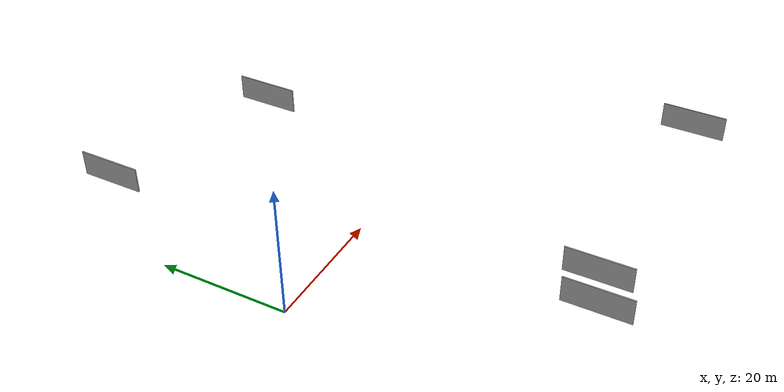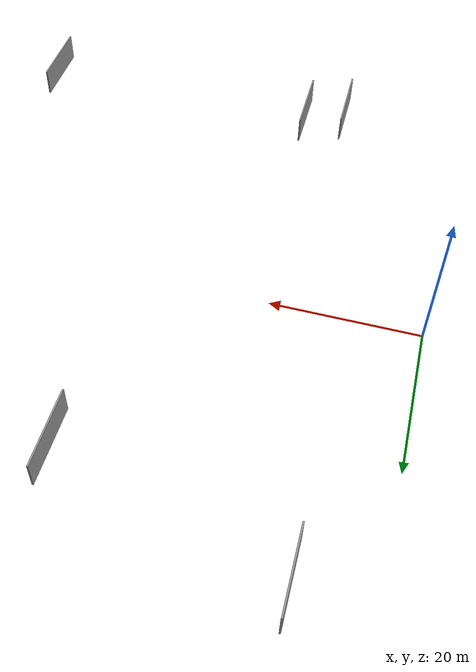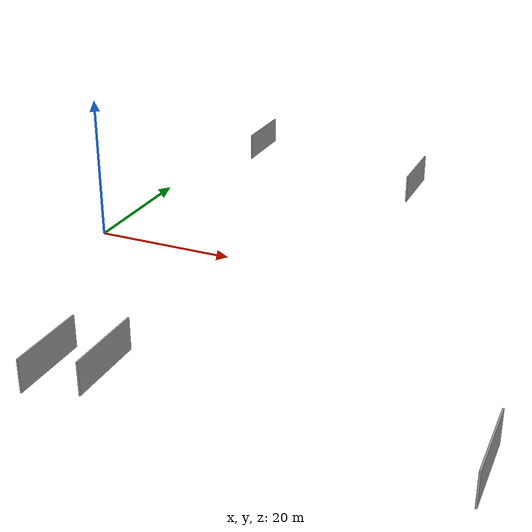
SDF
<sdf version="1.6">
 <world name="default">
  <scene>
   <sky><clouds><speed>12</speed></clouds></sky>
   <ambient>0.4 0.4 0.4 1</ambient>
   <background>0.7 0.7 0.7 1</background>
   <shadows>1</shadows>
  </scene>
  <gravity>0 0 -9.8066</gravity>
  <magnetic_field>6e-06 2.3e-05 -4.2e-05</magnetic_field>
  <physics default="0" name="default_physics" type="ode">
   <ode>
    <solver>
     <type>quick</type>
     <iters>10</iters>
     <sor>1.0</sor>
     <use_dynamic_moi_rescaling>0</use_dynamic_moi_rescaling>
    </solver>
    <constraints>
     <cfm>0</cfm>
     <erp>0.2</erp>
     <contact_max_correcting_vel>100</contact_max_correcting_vel>
     <contact_surface_layer>0.001</contact_surface_layer>
    </constraints>
   </ode>
   <max_step_size>0.004</max_step_size>
   <real_time_factor>1</real_time_factor>
   <real_time_update_rate>250</real_time_update_rate>
  </physics>
  <light name="sun" type="directional">
   <pose>0 0 10 0 0 0</pose>
   <diffuse>0.8 0.8 0.8 1</diffuse>
   <specular>0.2 0.2 0.2 1</specular>
   <attenuation>
    <range>1000</range>
    <constant>0.9</constant>
    <linear>0.01</linear>
    <quadratic>0.001</quadratic>
   </attenuation>
   <direction>-0.5 0.1 -0.9</direction>
  </light>
  <model name="grey_wall_1">
   <static>1</static>
   <pose>16.7734 -36.9548 2.5 0.000000 0.000000 1.570796</pose>
   <link name="link">
    <pose>0 0 2.00 0 0 0</pose>
    <collision name="collision"><geometry><box><size>10.00 0.2 4.00</size></box></geometry></collision>
    <visual name="visual">
     <cast_shadows>0</cast_shadows>
     <geometry><box><size>10.00 0.2 4.00</size></box></geometry>
     <material>
      <script>
       <uri>model://grey_wall/materials/scripts</uri>
       <uri>model://grey_wall/materials/textures</uri>
       <name>vrc/grey_wall</name>
      </script>
     </material>
    </visual>
   </link>
  </model>
  <model name="grey_wall_2">
   <static>1</static>
   <pose>63.2304 -35.9294 2.5 0.000000 0.000000 1.570796</pose>
   <link name="link">
    <pose>0 0 2.00 0 0 0</pose>
    <collision name="collision"><geometry><box><size>10.00 0.2 4.00</size></box></geometry></collision>
    <visual name="visual">
     <cast_shadows>0</cast_shadows>
     <geometry><box><size>10.00 0.2 4.00</size></box></geometry>
     <material>
      <script>
       <uri>model://grey_wall/materials/scripts</uri>
       <uri>model://grey_wall/materials/textures</uri>
       <name>vrc/grey_wall</name>
      </script>
     </material>
    </visual>
   </link>
  </model>
  <model name="grey_wall_3">
   <static>1</static>
   <pose>22.5656 -35.0059 2.5 0.000000 0.000000 1.570796</pose>
   <link name="link">
    <pose>0 0 2.00 0 0 0</pose>
    <collision name="collision"><geometry><box><size>10.00 0.2 4.00</size></box></geometry></collision>
    <visual name="visual">
     <cast_shadows>0</cast_shadows>
     <geometry><box><size>10.00 0.2 4.00</size></box></geometry>
     <material>
      <script>
       <uri>model://grey_wall/materials/scripts</uri>
       <uri>model://grey_wall/materials/textures</uri>
       <name>vrc/grey_wall</name>
      </script>
     </material>
    </visual>
   </link>
  </model>
  <model name="grey_wall_4">
   <static>1</static>
   <pose>9.3378 36.6637 2.5 0.000000 0.000000 1.570796</pose>
   <link name="link">
    <pose>0 0 2.00 0 0 0</pose>
    <collision name="collision"><geometry><box><size>10.00 0.2 4.00</size></box></geometry></collision>
    <visual name="visual">
     <cast_shadows>0</cast_shadows>
     <geometry><box><size>10.00 0.2 4.00</size></box></geometry>
     <material>
      <script>
       <uri>model://grey_wall/materials/scripts</uri>
       <uri>model://grey_wall/materials/textures</uri>
       <name>vrc/grey_wall</name>
      </script>
     </material>
    </visual>
   </link>
  </model>
  <model name="grey_wall_5">
   <static>1</static>
   <pose>38.5172 28.4278 2.5 0.000000 0.000000 1.570796</pose>
   <link name="link">
    <pose>0 0 2.00 0 0 0</pose>
    <collision name="collision"><geometry><box><size>10.00 0.2 4.00</size></box></geometry></collision>
    <visual name="visual">
     <cast_shadows>0</cast_shadows>
     <geometry><box><size>10.00 0.2 4.00</size></box></geometry>
     <material>
      <script>
       <uri>model://grey_wall/materials/scripts</uri>
       <uri>model://grey_wall/materials/textures</uri>
       <name>vrc/grey_wall</name>
      </script>
     </material>
    </visual>
   </link>
  </model>
 </world>
</sdf>
